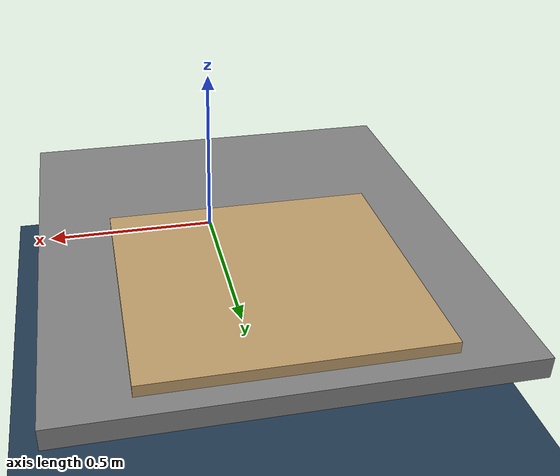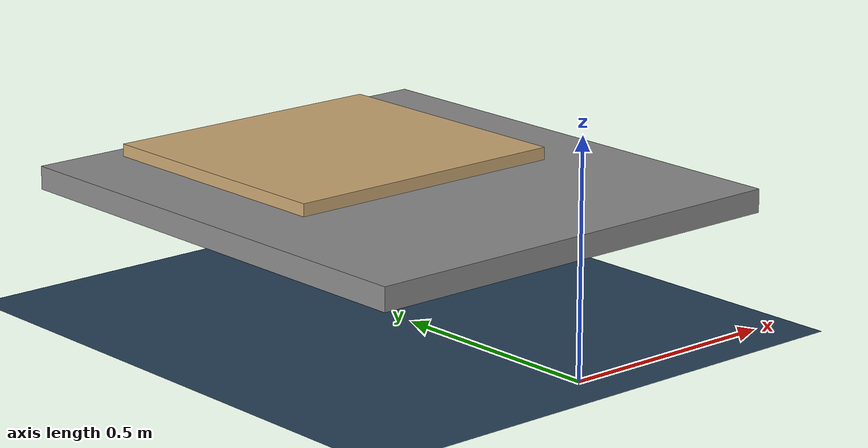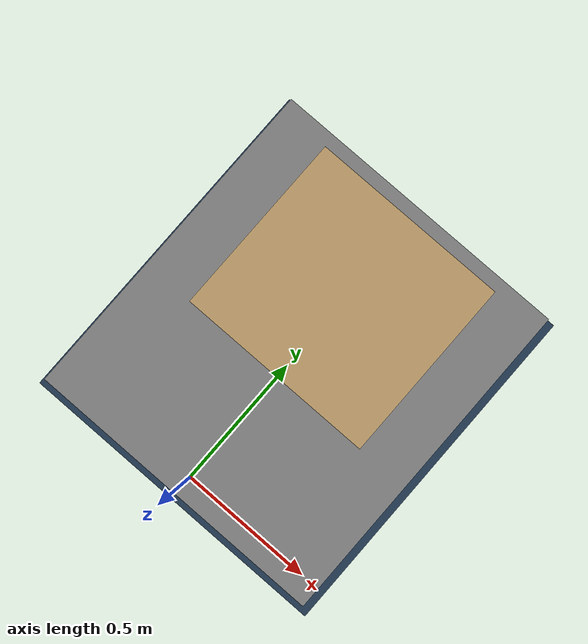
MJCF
<mujoco model="environment">

  <option integrator="implicitfast" timestep="0.002" cone="elliptic" impratio="10">
    <flag warmstart="enable"/>
  </option>

  <statistic center="0 0.4 0.35" extent="0.8"/>

  <visual>
    <headlight diffuse="0.6 0.6 0.6" ambient="0.3 0.3 0.3" specular="0 0 0"/>
    <rgba haze="0.15 0.25 0.35 1"/>
    <global azimuth="120" elevation="-20" offwidth="1920" offheight="1440"/>
  </visual>

  <default>
    <default class="table_contact">
      <geom condim="4" friction="0.5 0.005 0.001"/>
    </default>
  </default>

  <asset>
    <texture type="skybox" builtin="gradient" rgb1="0.3 0.5 0.7" rgb2="0 0 0"
      width="512" height="3072"/>
    <texture type="2d" name="table_tex" builtin="checker" mark="edge"
      rgb1="0.6 0.6 0.6" rgb2="0.5 0.5 0.5" markrgb="0.4 0.4 0.4"
      width="300" height="300"/>
    <texture type="2d" name="groundplane" builtin="checker" mark="edge"
      rgb1="0.2 0.3 0.4" rgb2="0.1 0.2 0.3" markrgb="0.8 0.8 0.8"
      width="300" height="300"/>
    <material name="table_mat" texture="table_tex" texuniform="true"
      texrepeat="3 3" reflectance="0.1"/>
    <material name="work_mat" rgba="0.80 0.66 0.45 1"
      specular="0.1" shininess="0.1" reflectance="0.0"/>
    <material name="groundplane" texture="groundplane" texuniform="true"
      texrepeat="5 5" reflectance="0.2"/>
  </asset>

  <worldbody>
    <light pos="0 0.4 1.5" dir="0 0 -1" directional="true"/>

    <!-- Ground plane -->
    <geom name="floor" size="0 0 0.05" type="plane" material="groundplane"/>

    <!-- Table: surface at z=0.3, extended in +y (to y=1.1) to fully support the work surface -->
    <body name="table" pos="0 0.55 0.275">
      <geom name="table_surface" type="box" size="0.5 0.55 0.025"
        class="table_contact" material="table_mat" mass="50"/>
    </body>

    <body name="work_surface" pos="0 0.75 0.3135">
      <geom name="work_surface_geom" type="box" size="0.325 0.3 0.0135"
        class="table_contact" material="work_mat" mass="20"/>
    </body>

    <!-- Top-down camera centered on push area -->
    <camera name="top_down" pos="0 0.5 1.2" xyaxes="1 0 0 0 1 0" fovy="45"/>
    <!-- Side view -->
    <camera name="side" pos="0.7 0.5 0.55" xyaxes="0 1 0 -0.25 0 0.97" fovy="60"/>
  </worldbody>
</mujoco>
